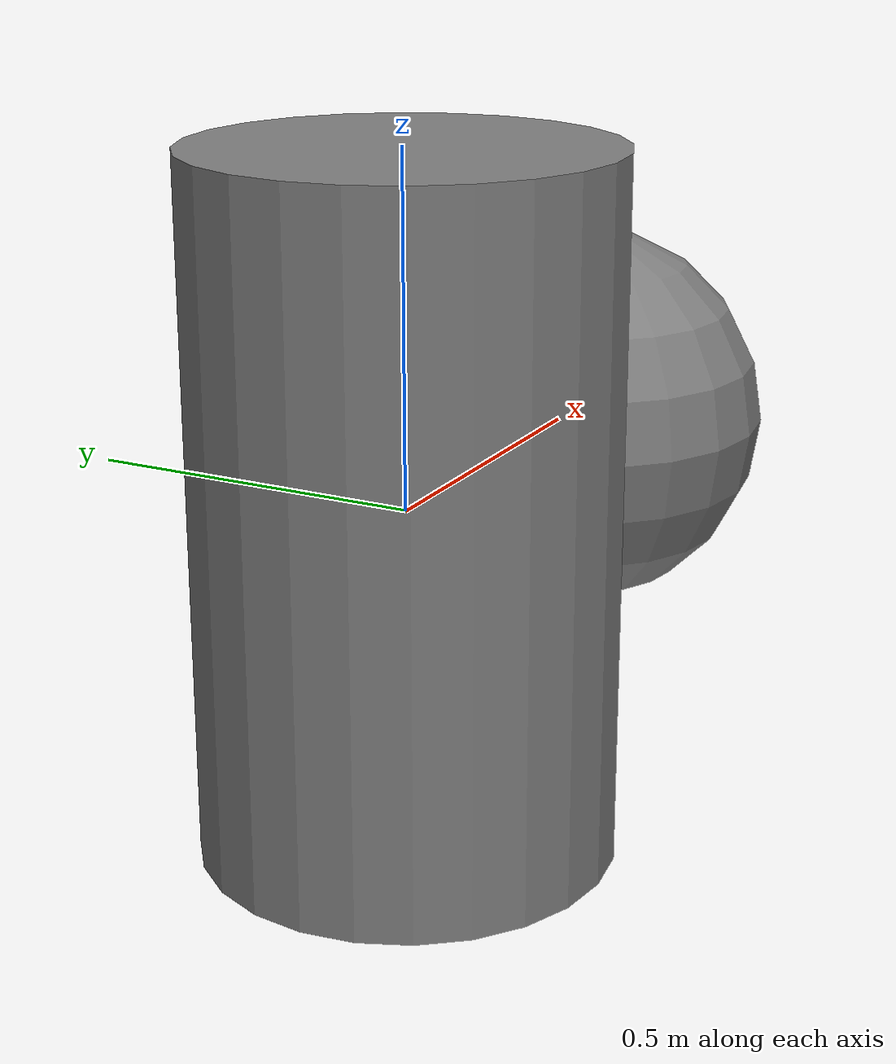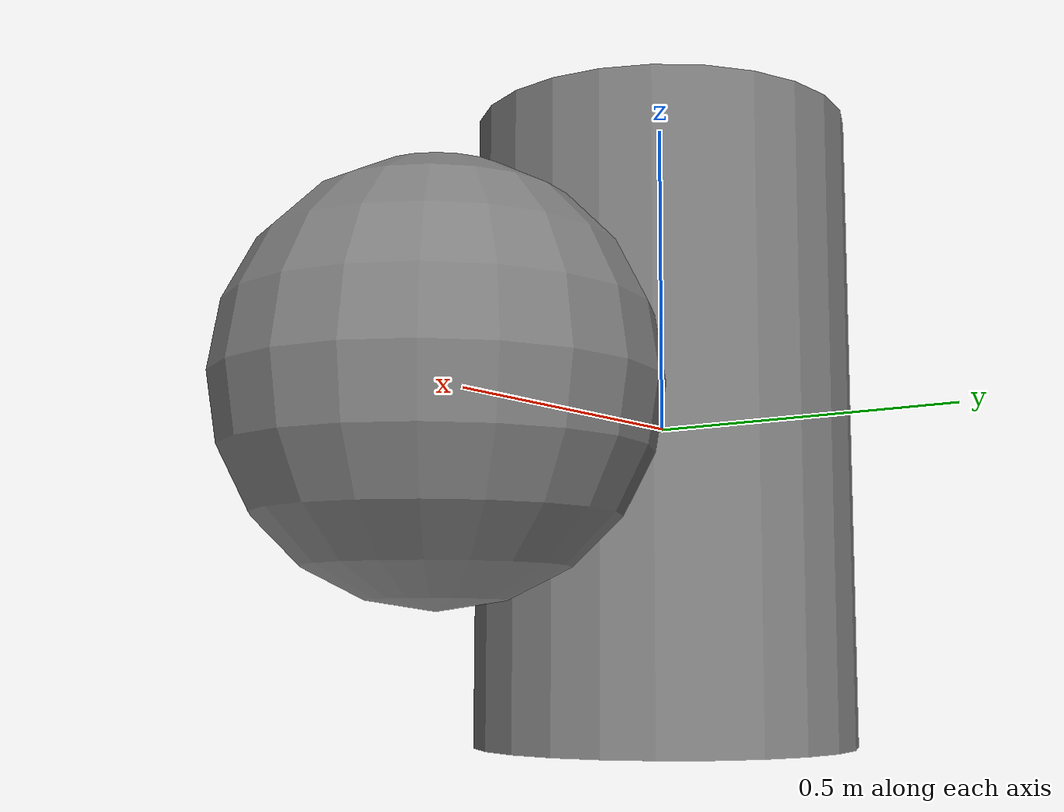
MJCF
<mujoco model="cyl_sphere_side">
            <option gravity="0 0 0" timestep="0.001"/>
            <worldbody>
                <body name="cyl" pos="0 0 0">
                    <joint type="free"/>
                    <geom type="cylinder" size="0.3 0.5"/>
                </body>
                <body name="sph" pos="0.55 0 0">
                    <joint type="free"/>
                    <geom type="sphere" size="0.3"/>
                </body>
            </worldbody>
        </mujoco>
